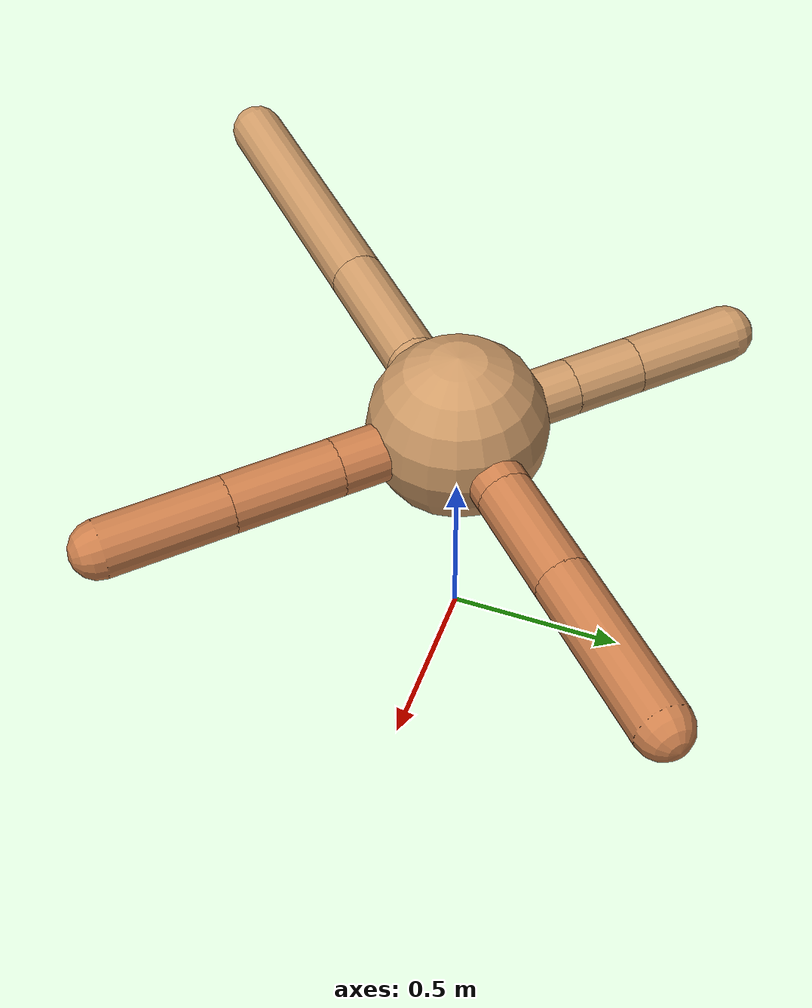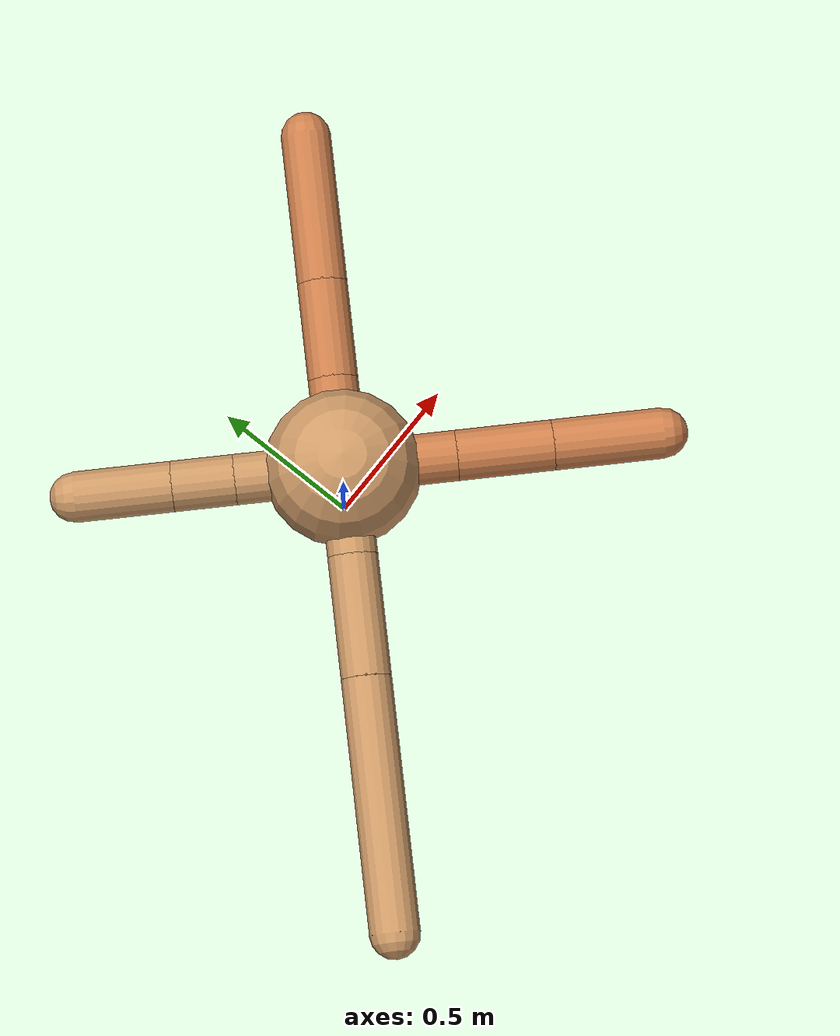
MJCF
<mujoco model="ant">
  <compiler angle="degree" coordinate="local" inertiafromgeom="true" />
  <option integrator="RK4" timestep="0.01" />
  <custom>
    <numeric data="0.0 0.0 0.55 1.0 0.0 0.0 0.0 0.0 1.0 0.0 -1.0 0.0 -1.0 0.0 1.0" name="init_qpos" />
  </custom>
  <default>
    <joint armature="1" damping="1" limited="true" />
    <geom conaffinity="0" condim="3" density="5.0" friction="1.5 0.1 0.1" margin="0.01" rgba="0.8 0.6 0.4 1" />
  </default>
  <worldbody>
    <body name="torso" pos="0 0 0.75">
      <geom name="torso_geom" pos="0 0 0" size="0.25" type="sphere" />

      <body name="front_left_leg" pos="0 0 0">
        <geom fromto="0.0 0.0 0.0 0.2 0.2 0.0" name="aux_1_geom" size="0.08" type="capsule" rgba=".8 .5 .3 1" />
        <body name="aux_1" pos="0.2 0.2 0.0">
          <joint axis="0 0 1" name="hip_1" pos="0.0 0.0 0.0" range="-40 40" type="hinge" />
          <geom fromto="0.0 0.0 0.0 0.2216279163005031 0.2216279163005031 0.0" name="left_leg_geom" size="0.08" type="capsule" rgba=".8 .5 .3 1" />
          <body pos="0.2216279163005031 0.2216279163005031 0.0" name="front_left_foot">
            <joint axis="-1 1 0" name="ankle_1" pos="0.0 0.0 0.0" range="30 100" type="hinge" />
            <geom fromto="0.0 0.0 0.0 0.34151807022574443 0.34151807022574443 0.0" name="left_ankle_geom" size="0.08" type="capsule" rgba=".8 .5 .3 1" />
          </body>
        </body>
      </body>
      <body name="front_right_leg" pos="0 0 0">
        <geom fromto="0.0 0.0 0.0 -0.2409647161512658 0.2409647161512658 0.0" name="aux_2_geom" size="0.08" type="capsule" />
        <body name="aux_2" pos="-0.2409647161512658 0.2409647161512658 0.0">
          <joint axis="0 0 1" name="hip_2" pos="0.0 0.0 0.0" range="-40 40" type="hinge" />
          <geom fromto="0.0 0.0 0.0 -0.1398844013007294 0.1398844013007294 0.0" name="right_leg_geom" size="0.08" type="capsule" />
          <body pos="-0.1398844013007294 0.1398844013007294 0.0" name="front_right_foot">
            <joint axis="1 1 0" name="ankle_2" pos="0.0 0.0 0.0" range="-100 -30" type="hinge" />
            <geom fromto="0.0 0.0 0.0 -0.21687146987018463 0.21687146987018463 0.0" name="right_ankle_geom" size="0.08" type="capsule" />
          </body>
        </body>
      </body>
      <body name="left_back_leg" pos="0 0 0">
        <geom fromto="0.0 0.0 0.0 -0.2 -0.2 0.0" name="aux_3_geom" size="0.08" type="capsule" />
        <body name="aux_3" pos="-0.2 -0.2 0.0">
          <joint axis="0 0 1" name="hip_3" pos="0.0 0.0 0.0" range="-40 40" type="hinge" />
          <geom fromto="0.0 0.0 0.0 -0.27308507105480856 -0.27308507105480856 0.0" name="back_leg_geom" size="0.08" type="capsule" />
          <body pos="-0.27308507105480856 -0.27308507105480856 0.0" name="left_back_foot">
            <joint axis="-1 1 0" name="ankle_3" pos="0.0 0.0 0.0" range="-100 -30" type="hinge" />
            <geom fromto="0.0 0.0 0.0 -0.5642786350316772 -0.5642786350316772 0.0" name="third_ankle_geom" size="0.08" type="capsule" />
          </body>
        </body>
      </body>
      <body name="right_back_leg" pos="0 0 0">
        <geom fromto="0.0 0.0 0.0 0.2540415374855705 -0.2540415374855705 0.0" name="aux_4_geom" size="0.08" type="capsule" rgba=".8 .5 .3 1" />
        <body name="aux_4" pos="0.2540415374855705 -0.2540415374855705 0.0">
          <joint axis="0 0 1" name="hip_4" pos="0.0 0.0 0.0" range="-40 40" type="hinge" />
          <geom fromto="0.0 0.0 0.0 0.2157361097406832 -0.2157361097406832 0.0" name="rightback_leg_geom" size="0.08" type="capsule" rgba=".8 .5 .3 1" />
          <body pos="0.2157361097406832 -0.2157361097406832 0.0" name="right_back_foot">
            <joint axis="1 1 0" name="ankle_4" pos="0.0 0.0 0.0" range="30 100" type="hinge" />
            <geom fromto="0.0 0.0 0.0 0.2463215639213602 -0.2463215639213602 0.0" name="fourth_ankle_geom" size="0.08" type="capsule" rgba=".8 .5 .3 1" />
          </body>
        </body>
      </body>
    </body>
  </worldbody>
  <actuator>
    <motor ctrllimited="true" ctrlrange="-1.0 1.0" joint="hip_4" gear="150" />
    <motor ctrllimited="true" ctrlrange="-1.0 1.0" joint="ankle_4" gear="150" />
    <motor ctrllimited="true" ctrlrange="-1.0 1.0" joint="hip_1" gear="150" />
    <motor ctrllimited="true" ctrlrange="-1.0 1.0" joint="ankle_1" gear="150" />
    <motor ctrllimited="true" ctrlrange="-1.0 1.0" joint="hip_2" gear="150" />
    <motor ctrllimited="true" ctrlrange="-1.0 1.0" joint="ankle_2" gear="150" />
    <motor ctrllimited="true" ctrlrange="-1.0 1.0" joint="hip_3" gear="150" />
    <motor ctrllimited="true" ctrlrange="-1.0 1.0" joint="ankle_3" gear="150" />
  </actuator>
</mujoco>
